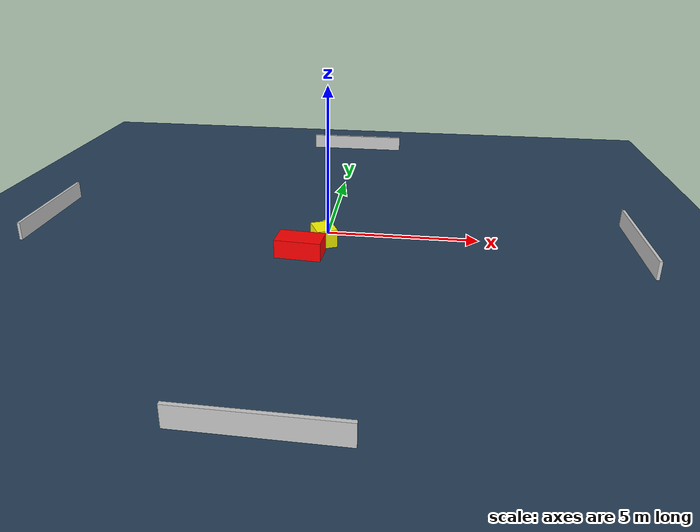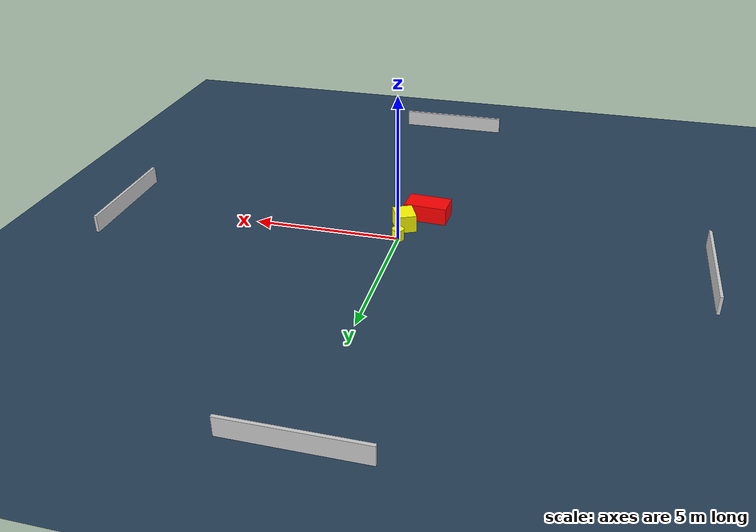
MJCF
<?xml version="1.0" ?>
<mujoco model="generated_environment">
  <option timestep="0.01" integrator="RK4" cone="elliptic"/>
  <default>
    <geom density="1"/>
  </default>
  <asset>
    <texture builtin="gradient" height="3072" name="skybox" rgb1="0.3 0.5 0.7" rgb2="0 0 0" type="skybox" width="512"/>
    <texture builtin="checker" height="300" name="groundplane" rgb1="0.2 0.3 0.4" rgb2="0.1 0.2 0.3" type="2d" width="300"/>
    <material name="groundplane" reflectance="0.2" texrepeat="5 5" texture="groundplane"/>
  </asset>
  <worldbody>
    <light dir="0 0 -1" directional="true" pos="0 0 1.5"/>
    <geom condim="3" friction="0.5 0.005 0.001" material="groundplane" name="floor" pos="0 0 0" size="0 0 0.05" type="plane"/>
    <body name="walls">
      <geom name="wall_1" condim="4" pos="-10.0 0.0 0.3" rgba="0.800000011920929 0.800000011920929 0.800000011920929 1.0" size="0.05 2.0 0.3" type="box"/>
      <geom name="wall_2" condim="4" pos="10.0 0.0 0.3" rgba="0.800000011920929 0.800000011920929 0.800000011920929 1.0" size="0.05 2.0 0.3" type="box"/>
      <geom name="wall_3" condim="4" pos="0.0 -10.0 0.3" rgba="0.800000011920929 0.800000011920929 0.800000011920929 1.0" size="2.0 0.05 0.3" type="box"/>
      <geom name="wall_4" condim="4" pos="0.0 10.0 0.3" rgba="0.800000011920929 0.800000011920929 0.800000011920929 1.0" size="2.0 0.05 0.3" type="box"/>
    </body>
    <body name="robot">
      <joint name="joint_x" type="slide" pos="0 0 0" axis="1 0 0"/>
      <joint name="joint_y" type="slide" pos="0 0 0" axis="0 1 0"/>
      <geom name="robot" type="cylinder" pos="0.0 0.0 0.2" size="0.2 0.2 0.0" mass="5.0" friction="1.0 0.005 0.0001" condim="4" rgba="1.0 1.0 0.0 1.0"/>
    </body>
    <body name="obstacle_1_movable">
      <geom name="obstacle_1_movable" condim="4" pos="-0.011716557042795195 -0.8506997970202502 0.3" euler="0 0 114.8295405775032" friction="0.0 0.005 0.001" rgba="1.0 1.0 0.0 1.0" size="0.4067254563261074 0.33982024436006075 0.3" type="box" mass="0.1"/>
      <joint type="free"/>
    </body>
    <body name="obstacle_2_static">
      <geom name="obstacle_2_static" condim="4" pos="-0.6378926121434096 -1.763176072255588 0.3" euler="0 0 356.3397520442967" friction="0.0 0.005 0.001" rgba="1.0 0.0 0.0 1.0" size="0.7392856291695629 0.42385760705437053 0.3" type="box"/>
    </body>
  </worldbody>
  <actuator>
    <motor name="actuator_x" joint="joint_x" gear="1" ctrlrange="-1 1"/>
    <motor name="actuator_y" joint="joint_y" gear="1" ctrlrange="-1 1"/>
  </actuator>
</mujoco>
